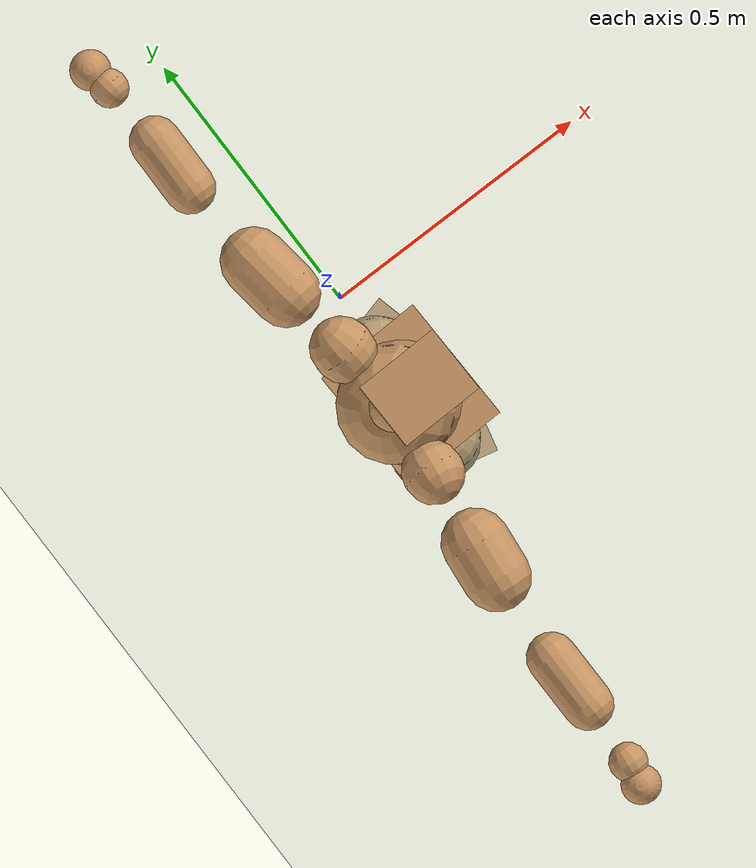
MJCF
<mujoco model="humanoid">
  <compiler coordinate="local" angle="radian"/>
  <default>
    <joint damping="0.0" armature="0.01" stiffness="0.0" limited="true"/>
    <geom conaffinity="1" condim="3" contype="7" margin="0.001" rgba="0.8 0.6 .4 1"/>
  </default>
  <asset>
    <texture type="skybox" builtin="gradient" rgb1=".4 .5 .6" rgb2="0 0 0" width="100" height="100"/>
    <texture builtin="flat" height="1278" mark="cross" markrgb="1 1 1" name="texgeom" random="0.01" rgb1="0.8 0.6 0.4" rgb2="0.8 0.6 0.4" type="cube" width="127"/>
    <texture builtin="checker" height="100" name="texplane" rgb1="0 0 0" rgb2="0.8 0.8 0.8" type="2d" width="100"/>
    <material name="MatPlane" reflectance="0.5" shininess="1" specular="1" texrepeat="60 60" texture="texplane"/>
    <material name="geom" texture="texgeom" texuniform="true"/>
  </asset>
  <worldbody>
    <light cutoff="100" diffuse="1 1 1" dir="-0 0 -1.3" directional="true" exponent="1" pos="0 0 1.3" specular=".1 .1 .1"/>
    <geom conaffinity="1" condim="3" name="floor" pos="0 0 0" rgba="0.8 0.9 0.8 1" size="100 100 .2" type="plane" material="MatPlane"/>
    <body name="Pelvis" pos="-0.0016 -0.2061 0.0404">
      <freejoint name="Pelvis"/>
      <geom type="box" contype="1" conaffinity="1" density="5359.375232" pos="-0.0051 -0.0001 -0.0125" size="0.1004 0.1188 0.0414" quat="0.9999 0.0000 0.0000 0.0135" name="Pelvis"/>
      <body name="L_Hip" pos="0.0003 0.079 -0.0897">
        <joint name="L_Hip_x" type="hinge" pos="0 0 0" axis="1 0 0" stiffness="1600" damping="160" armature="0.02" range="-180.0000 180.0000"/>
        <joint name="L_Hip_y" type="hinge" pos="0 0 0" axis="0 1 0" stiffness="1600" damping="160" armature="0.02" range="-180.0000 180.0000"/>
        <joint name="L_Hip_z" type="hinge" pos="0 0 0" axis="0 0 1" stiffness="1600" damping="160" armature="0.02" range="-180.0000 180.0000"/>
        <geom type="capsule" contype="1" conaffinity="1" density="2040.816327" size="0.0692" fromto="-0.0037 0.0072 -0.0988 -0.0094 0.0181 -0.2497" name="L_Hip"/>
        <body name="L_Knee" pos="-0.0131 0.0253 -0.3485">
          <joint name="L_Knee_x" type="hinge" pos="0 0 0" axis="1 0 0" stiffness="1600" damping="160" armature="0.02" range="-180.0000 180.0000"/>
          <joint name="L_Knee_y" type="hinge" pos="0 0 0" axis="0 1 0" stiffness="1600" damping="160" armature="0.02" range="-180.0000 180.0000"/>
          <joint name="L_Knee_z" type="hinge" pos="0 0 0" axis="0 0 1" stiffness="1600" damping="160" armature="0.02" range="-180.0000 180.0000"/>
          <geom type="capsule" contype="1" conaffinity="1" density="1234.567901" size="0.0573" fromto="-0.0110 -0.0023 -0.0866 -0.0358 -0.0074 -0.2807" name="L_Knee"/>
          <body name="L_Ankle" pos="-0.0469 -0.0096 -0.3672">
            <joint name="L_Ankle_x" type="hinge" pos="0 0 0" axis="1 0 0" stiffness="1600" damping="160" armature="0.02" range="-180.0000 180.0000"/>
            <joint name="L_Ankle_y" type="hinge" pos="0 0 0" axis="0 1 0" stiffness="1600" damping="160" armature="0.02" range="-180.0000 180.0000"/>
            <joint name="L_Ankle_z" type="hinge" pos="0 0 0" axis="0 0 1" stiffness="1600" damping="160" armature="0.02" range="-180.0000 180.0000"/>
            <geom type="box" contype="1" conaffinity="1" density="1000" pos="0.0563 0.0141 -0.0268" size="0.0836 0.0504 0.0194" quat="0.9925 0.0000 0.0000 0.1224" name="L_Ankle"/>
            <body name="L_Toe" pos="0.1126 0.0282 -0.0537">
              <joint name="L_Toe_x" type="hinge" pos="0 0 0" axis="1 0 0" stiffness="1000" damping="100" armature="0.02" range="-180.0000 180.0000"/>
              <joint name="L_Toe_y" type="hinge" pos="0 0 0" axis="0 1 0" stiffness="1000" damping="100" armature="0.02" range="-180.0000 180.0000"/>
              <joint name="L_Toe_z" type="hinge" pos="0 0 0" axis="0 0 1" stiffness="1000" damping="100" armature="0.02" range="-180.0000 180.0000"/>
              <geom type="box" contype="1" conaffinity="1" density="8259943.58476" pos="0.0000 0.0000 0.0267" size="0.001 0.0025 0.001" quat="0.9917 0.0000 0.0000 0.1285" name="L_Toe"/>
            </body>
          </body>
        </body>
      </body>
      <body name="R_Hip" pos="0.0021 -0.0772 -0.0897">
        <joint name="R_Hip_x" type="hinge" pos="0 0 0" axis="1 0 0" stiffness="1600" damping="160" armature="0.02" range="-180.0000 180.0000"/>
        <joint name="R_Hip_y" type="hinge" pos="0 0 0" axis="0 1 0" stiffness="1600" damping="160" armature="0.02" range="-180.0000 180.0000"/>
        <joint name="R_Hip_z" type="hinge" pos="0 0 0" axis="0 0 1" stiffness="1600" damping="160" armature="0.02" range="-180.0000 180.0000"/>
        <geom type="capsule" contype="1" conaffinity="1" density="2040.816327" size="0.0685" fromto="-0.0043 -0.0086 -0.0980 -0.0111 -0.0224 -0.2544" name="R_Hip"/>
        <body name="R_Knee" pos="-0.0153 -0.031 -0.3524">
          <joint name="R_Knee_x" type="hinge" pos="0 0 0" axis="1 0 0" stiffness="1600" damping="160" armature="0.02" range="-180.0000 180.0000"/>
          <joint name="R_Knee_y" type="hinge" pos="0 0 0" axis="0 1 0" stiffness="1600" damping="160" armature="0.02" range="-180.0000 180.0000"/>
          <joint name="R_Knee_z" type="hinge" pos="0 0 0" axis="0 0 1" stiffness="1600" damping="160" armature="0.02" range="-180.0000 180.0000"/>
          <geom type="capsule" contype="1" conaffinity="1" density="1234.567901" size="0.0571" fromto="-0.0109 0.0025 -0.0864 -0.0356 0.0081 -0.2807" name="R_Knee"/>
          <body name="R_Ankle" pos="-0.0465 0.0105 -0.3672">
            <joint name="R_Ankle_x" type="hinge" pos="0 0 0" axis="1 0 0" stiffness="1600" damping="160" armature="0.02" range="-180.0000 180.0000"/>
            <joint name="R_Ankle_y" type="hinge" pos="0 0 0" axis="0 1 0" stiffness="1600" damping="160" armature="0.02" range="-180.0000 180.0000"/>
            <joint name="R_Ankle_z" type="hinge" pos="0 0 0" axis="0 0 1" stiffness="1600" damping="160" armature="0.02" range="-180.0000 180.0000"/>
            <geom type="box" contype="1" conaffinity="1" density="999.999956" pos="0.0582 -0.0139 -0.0227" size="0.083 0.0477 0.0199" quat="0.9931 0.0000 0.0000 -0.1168" name="R_Ankle"/>
            <body name="R_Toe" pos="0.1163 -0.0278 -0.0454">
              <joint name="R_Toe_x" type="hinge" pos="0 0 0" axis="1 0 0" stiffness="1000" damping="100" armature="0.02" range="-180.0000 180.0000"/>
              <joint name="R_Toe_y" type="hinge" pos="0 0 0" axis="0 1 0" stiffness="1000" damping="100" armature="0.02" range="-180.0000 180.0000"/>
              <joint name="R_Toe_z" type="hinge" pos="0 0 0" axis="0 0 1" stiffness="1000" damping="100" armature="0.02" range="-180.0000 180.0000"/>
              <geom type="box" contype="1" conaffinity="1" density="8107830.530151" pos="0.0000 0.0000 0.0246" size="0.0009 0.0024 0.0011" quat="0.9943 0.0000 0.0000 -0.1070" name="R_Toe"/>
            </body>
          </body>
        </body>
      </body>
      <body name="Torso" pos="-0.0332 -0.0027 0.1046">
        <joint name="Torso_x" type="hinge" pos="0 0 0" axis="1 0 0" stiffness="2000" damping="200" armature="0.02" range="-180.0000 180.0000"/>
        <joint name="Torso_y" type="hinge" pos="0 0 0" axis="0 1 0" stiffness="2000" damping="200" armature="0.02" range="-180.0000 180.0000"/>
        <joint name="Torso_z" type="hinge" pos="0 0 0" axis="0 0 1" stiffness="2000" damping="200" armature="0.02" range="-180.0000 180.0000"/>
        <geom type="capsule" contype="1" conaffinity="1" density="2040.816327" size="0.0783" fromto="-0.0053 0.0023 0.0781 -0.0027 0.0011 0.0395" name="Torso"/>
        <body name="Spine" pos="-0.0079 0.0034 0.1176">
          <joint name="Spine_x" type="hinge" pos="0 0 0" axis="1 0 0" stiffness="2000" damping="200" armature="0.02" range="-180.0000 180.0000"/>
          <joint name="Spine_y" type="hinge" pos="0 0 0" axis="0 1 0" stiffness="2000" damping="200" armature="0.02" range="-180.0000 180.0000"/>
          <joint name="Spine_z" type="hinge" pos="0 0 0" axis="0 0 1" stiffness="2000" damping="200" armature="0.02" range="-180.0000 180.0000"/>
          <geom type="capsule" contype="1" conaffinity="1" density="2040.816327" size="0.077" fromto="0.0440 0.0031 0.0632 -0.0114 -0.0008 -0.0164" name="Spine"/>
          <body name="Chest" pos="0.0326 0.0023 0.0468">
            <joint name="Chest_x" type="hinge" pos="0 0 0" axis="1 0 0" stiffness="2000" damping="200" armature="0.02" range="-180.0000 180.0000"/>
            <joint name="Chest_y" type="hinge" pos="0 0 0" axis="0 1 0" stiffness="2000" damping="200" armature="0.02" range="-180.0000 180.0000"/>
            <joint name="Chest_z" type="hinge" pos="0 0 0" axis="0 0 1" stiffness="2000" damping="200" armature="0.02" range="-180.0000 180.0000"/>
            <geom type="capsule" contype="1" conaffinity="1" density="2040.816327" size="0.1013" fromto="-0.0290 -0.0005 0.0971 -0.0144 -0.0002 0.0482" name="Chest"/>
            <body name="Neck" pos="-0.0517 -0.0014 0.2013">
              <joint name="Neck_x" type="hinge" pos="0 0 0" axis="1 0 0" stiffness="1000" damping="100" armature="0.02" range="-180.0000 180.0000"/>
              <joint name="Neck_y" type="hinge" pos="0 0 0" axis="0 1 0" stiffness="1000" damping="100" armature="0.02" range="-180.0000 180.0000"/>
              <joint name="Neck_z" type="hinge" pos="0 0 0" axis="0 0 1" stiffness="1000" damping="100" armature="0.02" range="-180.0000 180.0000"/>
              <geom type="capsule" contype="1" conaffinity="1" density="1000" size="0.0423" fromto="0.0274 -0.0007 0.0322 0.0177 -0.0004 0.0208" name="Neck"/>
              <body name="Head" pos="0.0451 -0.0011 0.053">
                <joint name="Head_x" type="hinge" pos="0 0 0" axis="1 0 0" stiffness="1000" damping="100" armature="0.02" range="-180.0000 180.0000"/>
                <joint name="Head_y" type="hinge" pos="0 0 0" axis="0 1 0" stiffness="1000" damping="100" armature="0.02" range="-180.0000 180.0000"/>
                <joint name="Head_z" type="hinge" pos="0 0 0" axis="0 0 1" stiffness="1000" damping="100" armature="0.02" range="-180.0000 180.0000"/>
                <geom type="box" contype="1" conaffinity="1" density="2250.000024" pos="0.0235 0.0005 0.0275" size="0.0758 0.061 0.0524" quat="1.0000 0.0000 0.0000 0.0098" name="Head"/>
              </body>
            </body>
            <body name="L_Thorax" pos="-0.037 0.0794 0.118">
              <joint name="L_Thorax_x" type="hinge" pos="0 0 0" axis="1 0 0" stiffness="1000" damping="100" armature="0.02" range="-180.0000 180.0000"/>
              <joint name="L_Thorax_y" type="hinge" pos="0 0 0" axis="0 1 0" stiffness="1000" damping="100" armature="0.02" range="-180.0000 180.0000"/>
              <joint name="L_Thorax_z" type="hinge" pos="0 0 0" axis="0 0 1" stiffness="1000" damping="100" armature="0.02" range="-180.0000 180.0000"/>
              <geom type="capsule" contype="1" conaffinity="1" density="1000" size="0.0534" fromto="-0.0064 0.0496 0.0187 -0.0051 0.0397 0.0150" name="L_Thorax"/>
              <body name="L_Shoulder" pos="-0.0115 0.0893 0.0337">
                <joint name="L_Shoulder_x" type="hinge" pos="0 0 0" axis="1 0 0" stiffness="1000" damping="100" armature="0.02" range="-720.0000 720.0000"/>
                <joint name="L_Shoulder_y" type="hinge" pos="0 0 0" axis="0 1 0" stiffness="1000" damping="100" armature="0.02" range="-720.0000 720.0000"/>
                <joint name="L_Shoulder_z" type="hinge" pos="0 0 0" axis="0 0 1" stiffness="1000" damping="100" armature="0.02" range="-720.0000 720.0000"/>
                <geom type="capsule" contype="1" conaffinity="1" density="1000" size="0.0575" fromto="-0.0117 0.0866 -0.0041 -0.0218 0.1613 -0.0077" name="L_Shoulder"/>
                <body name="L_Elbow" pos="-0.0334 0.2479 -0.0119">
                  <joint name="L_Elbow_x" type="hinge" pos="0 0 0" axis="1 0 0" stiffness="1000" damping="100" armature="0.02" range="-720.0000 720.0000"/>
                  <joint name="L_Elbow_y" type="hinge" pos="0 0 0" axis="0 1 0" stiffness="1000" damping="100" armature="0.02" range="-720.0000 720.0000"/>
                  <joint name="L_Elbow_z" type="hinge" pos="0 0 0" axis="0 0 1" stiffness="1000" damping="100" armature="0.02" range="-720.0000 720.0000"/>
                  <geom type="capsule" contype="1" conaffinity="1" density="1000" size="0.043" fromto="0.0008 0.0729 0.0029 0.0019 0.1698 0.0069" name="L_Elbow"/>
                  <body name="L_Wrist" pos="0.0027 0.2427 0.0098">
                    <joint name="L_Wrist_x" type="hinge" pos="0 0 0" axis="1 0 0" stiffness="600" damping="60" armature="0.02" range="-180.0000 180.0000"/>
                    <joint name="L_Wrist_y" type="hinge" pos="0 0 0" axis="0 1 0" stiffness="600" damping="60" armature="0.02" range="-180.0000 180.0000"/>
                    <joint name="L_Wrist_z" type="hinge" pos="0 0 0" axis="0 0 1" stiffness="600" damping="60" armature="0.02" range="-180.0000 180.0000"/>
                    <geom type="capsule" contype="1" conaffinity="1" density="1000" size="0.0326" fromto="-0.0069 0.0419 -0.0051 -0.0072 0.0438 -0.0053" name="L_Wrist"/>
                    <body name="L_Hand" pos="-0.014 0.0857 -0.0104">
                      <joint name="L_Hand_x" type="hinge" pos="0 0 0" axis="1 0 0" stiffness="600" damping="60" armature="0.02" range="-180.0000 180.0000"/>
                      <joint name="L_Hand_y" type="hinge" pos="0 0 0" axis="0 1 0" stiffness="600" damping="60" armature="0.02" range="-180.0000 180.0000"/>
                      <joint name="L_Hand_z" type="hinge" pos="0 0 0" axis="0 0 1" stiffness="600" damping="60" armature="0.02" range="-180.0000 180.0000"/>
                      <geom type="sphere" contype="1" conaffinity="1" density="1000" size="0.0346" pos="0.0000 0.0000 0.0000" name="L_Hand"/>
                    </body>
                  </body>
                </body>
              </body>
            </body>
            <body name="R_Thorax" pos="-0.0417 -0.0801 0.1164">
              <joint name="R_Thorax_x" type="hinge" pos="0 0 0" axis="1 0 0" stiffness="1000" damping="100" armature="0.02" range="-180.0000 180.0000"/>
              <joint name="R_Thorax_y" type="hinge" pos="0 0 0" axis="0 1 0" stiffness="1000" damping="100" armature="0.02" range="-180.0000 180.0000"/>
              <joint name="R_Thorax_z" type="hinge" pos="0 0 0" axis="0 0 1" stiffness="1000" damping="100" armature="0.02" range="-180.0000 180.0000"/>
              <geom type="capsule" contype="1" conaffinity="1" density="1000" size="0.0522" fromto="-0.0064 -0.0491 0.0167 -0.0058 -0.0439 0.0150" name="R_Thorax"/>
              <body name="R_Shoulder" pos="-0.0122 -0.093 0.0317">
                <joint name="R_Shoulder_x" type="hinge" pos="0 0 0" axis="1 0 0" stiffness="1000" damping="100" armature="0.02" range="-720.0000 720.0000"/>
                <joint name="R_Shoulder_y" type="hinge" pos="0 0 0" axis="0 1 0" stiffness="1000" damping="100" armature="0.02" range="-720.0000 720.0000"/>
                <joint name="R_Shoulder_z" type="hinge" pos="0 0 0" axis="0 0 1" stiffness="1000" damping="100" armature="0.02" range="-720.0000 720.0000"/>
                <geom type="capsule" contype="1" conaffinity="1" density="1000" size="0.0579" fromto="-0.0090 -0.0874 -0.0036 -0.0160 -0.1549 -0.0064" name="R_Shoulder"/>
                <body name="R_Elbow" pos="-0.0251 -0.2423 -0.01">
                  <joint name="R_Elbow_x" type="hinge" pos="0 0 0" axis="1 0 0" stiffness="1000" damping="100" armature="0.02" range="-720.0000 720.0000"/>
                  <joint name="R_Elbow_y" type="hinge" pos="0 0 0" axis="0 1 0" stiffness="1000" damping="100" armature="0.02" range="-720.0000 720.0000"/>
                  <joint name="R_Elbow_z" type="hinge" pos="0 0 0" axis="0 0 1" stiffness="1000" damping="100" armature="0.02" range="-720.0000 720.0000"/>
                  <geom type="capsule" contype="1" conaffinity="1" density="1000" size="0.0426" fromto="0.0004 -0.0725 0.0033 0.0010 -0.1716 0.0078" name="R_Elbow"/>
                  <body name="R_Wrist" pos="0.0015 -0.244 0.0112">
                    <joint name="R_Wrist_x" type="hinge" pos="0 0 0" axis="1 0 0" stiffness="600" damping="60" armature="0.02" range="-180.0000 180.0000"/>
                    <joint name="R_Wrist_y" type="hinge" pos="0 0 0" axis="0 1 0" stiffness="600" damping="60" armature="0.02" range="-180.0000 180.0000"/>
                    <joint name="R_Wrist_z" type="hinge" pos="0 0 0" axis="0 0 1" stiffness="600" damping="60" armature="0.02" range="-180.0000 180.0000"/>
                    <geom type="capsule" contype="1" conaffinity="1" density="1000" size="0.0327" fromto="-0.0055 -0.0412 -0.0037 -0.0057 -0.0432 -0.0039" name="R_Wrist"/>
                    <body name="R_Hand" pos="-0.0112 -0.0844 -0.0076">
                      <joint name="R_Hand_x" type="hinge" pos="0 0 0" axis="1 0 0" stiffness="600" damping="60" armature="0.02" range="-180.0000 180.0000"/>
                      <joint name="R_Hand_y" type="hinge" pos="0 0 0" axis="0 1 0" stiffness="600" damping="60" armature="0.02" range="-180.0000 180.0000"/>
                      <joint name="R_Hand_z" type="hinge" pos="0 0 0" axis="0 0 1" stiffness="600" damping="60" armature="0.02" range="-180.0000 180.0000"/>
                      <geom type="sphere" contype="1" conaffinity="1" density="1000" size="0.0341" pos="0.0000 0.0000 0.0000" name="R_Hand"/>
                    </body>
                  </body>
                </body>
              </body>
            </body>
          </body>
        </body>
      </body>
    </body>
  </worldbody>
  <actuator>
    <motor name="L_Hip_x" joint="L_Hip_x" gear="500"/>
    <motor name="L_Hip_y" joint="L_Hip_y" gear="500"/>
    <motor name="L_Hip_z" joint="L_Hip_z" gear="500"/>
    <motor name="L_Knee_x" joint="L_Knee_x" gear="500"/>
    <motor name="L_Knee_y" joint="L_Knee_y" gear="500"/>
    <motor name="L_Knee_z" joint="L_Knee_z" gear="500"/>
    <motor name="L_Ankle_x" joint="L_Ankle_x" gear="500"/>
    <motor name="L_Ankle_y" joint="L_Ankle_y" gear="500"/>
    <motor name="L_Ankle_z" joint="L_Ankle_z" gear="500"/>
    <motor name="L_Toe_x" joint="L_Toe_x" gear="500"/>
    <motor name="L_Toe_y" joint="L_Toe_y" gear="500"/>
    <motor name="L_Toe_z" joint="L_Toe_z" gear="500"/>
    <motor name="R_Hip_x" joint="R_Hip_x" gear="500"/>
    <motor name="R_Hip_y" joint="R_Hip_y" gear="500"/>
    <motor name="R_Hip_z" joint="R_Hip_z" gear="500"/>
    <motor name="R_Knee_x" joint="R_Knee_x" gear="500"/>
    <motor name="R_Knee_y" joint="R_Knee_y" gear="500"/>
    <motor name="R_Knee_z" joint="R_Knee_z" gear="500"/>
    <motor name="R_Ankle_x" joint="R_Ankle_x" gear="500"/>
    <motor name="R_Ankle_y" joint="R_Ankle_y" gear="500"/>
    <motor name="R_Ankle_z" joint="R_Ankle_z" gear="500"/>
    <motor name="R_Toe_x" joint="R_Toe_x" gear="500"/>
    <motor name="R_Toe_y" joint="R_Toe_y" gear="500"/>
    <motor name="R_Toe_z" joint="R_Toe_z" gear="500"/>
    <motor name="Torso_x" joint="Torso_x" gear="500"/>
    <motor name="Torso_y" joint="Torso_y" gear="500"/>
    <motor name="Torso_z" joint="Torso_z" gear="500"/>
    <motor name="Spine_x" joint="Spine_x" gear="500"/>
    <motor name="Spine_y" joint="Spine_y" gear="500"/>
    <motor name="Spine_z" joint="Spine_z" gear="500"/>
    <motor name="Chest_x" joint="Chest_x" gear="500"/>
    <motor name="Chest_y" joint="Chest_y" gear="500"/>
    <motor name="Chest_z" joint="Chest_z" gear="500"/>
    <motor name="Neck_x" joint="Neck_x" gear="500"/>
    <motor name="Neck_y" joint="Neck_y" gear="500"/>
    <motor name="Neck_z" joint="Neck_z" gear="500"/>
    <motor name="Head_x" joint="Head_x" gear="500"/>
    <motor name="Head_y" joint="Head_y" gear="500"/>
    <motor name="Head_z" joint="Head_z" gear="500"/>
    <motor name="L_Thorax_x" joint="L_Thorax_x" gear="500"/>
    <motor name="L_Thorax_y" joint="L_Thorax_y" gear="500"/>
    <motor name="L_Thorax_z" joint="L_Thorax_z" gear="500"/>
    <motor name="L_Shoulder_x" joint="L_Shoulder_x" gear="500"/>
    <motor name="L_Shoulder_y" joint="L_Shoulder_y" gear="500"/>
    <motor name="L_Shoulder_z" joint="L_Shoulder_z" gear="500"/>
    <motor name="L_Elbow_x" joint="L_Elbow_x" gear="500"/>
    <motor name="L_Elbow_y" joint="L_Elbow_y" gear="500"/>
    <motor name="L_Elbow_z" joint="L_Elbow_z" gear="500"/>
    <motor name="L_Wrist_x" joint="L_Wrist_x" gear="500"/>
    <motor name="L_Wrist_y" joint="L_Wrist_y" gear="500"/>
    <motor name="L_Wrist_z" joint="L_Wrist_z" gear="500"/>
    <motor name="L_Hand_x" joint="L_Hand_x" gear="500"/>
    <motor name="L_Hand_y" joint="L_Hand_y" gear="500"/>
    <motor name="L_Hand_z" joint="L_Hand_z" gear="500"/>
    <motor name="R_Thorax_x" joint="R_Thorax_x" gear="500"/>
    <motor name="R_Thorax_y" joint="R_Thorax_y" gear="500"/>
    <motor name="R_Thorax_z" joint="R_Thorax_z" gear="500"/>
    <motor name="R_Shoulder_x" joint="R_Shoulder_x" gear="500"/>
    <motor name="R_Shoulder_y" joint="R_Shoulder_y" gear="500"/>
    <motor name="R_Shoulder_z" joint="R_Shoulder_z" gear="500"/>
    <motor name="R_Elbow_x" joint="R_Elbow_x" gear="500"/>
    <motor name="R_Elbow_y" joint="R_Elbow_y" gear="500"/>
    <motor name="R_Elbow_z" joint="R_Elbow_z" gear="500"/>
    <motor name="R_Wrist_x" joint="R_Wrist_x" gear="500"/>
    <motor name="R_Wrist_y" joint="R_Wrist_y" gear="500"/>
    <motor name="R_Wrist_z" joint="R_Wrist_z" gear="500"/>
    <motor name="R_Hand_x" joint="R_Hand_x" gear="500"/>
    <motor name="R_Hand_y" joint="R_Hand_y" gear="500"/>
    <motor name="R_Hand_z" joint="R_Hand_z" gear="500"/>
  </actuator>
  <contact>
    <exclude body1="Torso" body2="Chest"/>
    <exclude body1="Head" body2="Chest"/>
    <exclude body1="R_Knee" body2="R_Toe"/>
    <exclude body1="R_Knee" body2="L_Ankle"/>
    <exclude body1="R_Knee" body2="L_Toe"/>
    <exclude body1="L_Knee" body2="L_Toe"/>
    <exclude body1="L_Knee" body2="R_Ankle"/>
    <exclude body1="L_Knee" body2="R_Toe"/>
    <exclude body1="L_Shoulder" body2="Chest"/>
    <exclude body1="R_Shoulder" body2="Chest"/>
  </contact>
  <sensor/>
  <size njmax="700" nconmax="700"/>
</mujoco>
